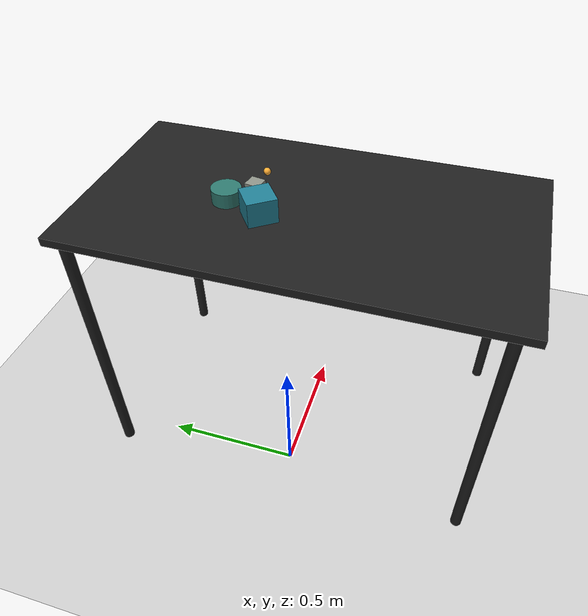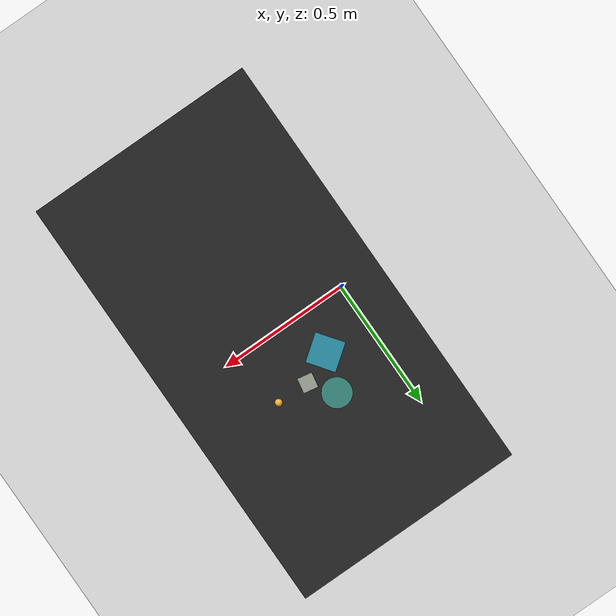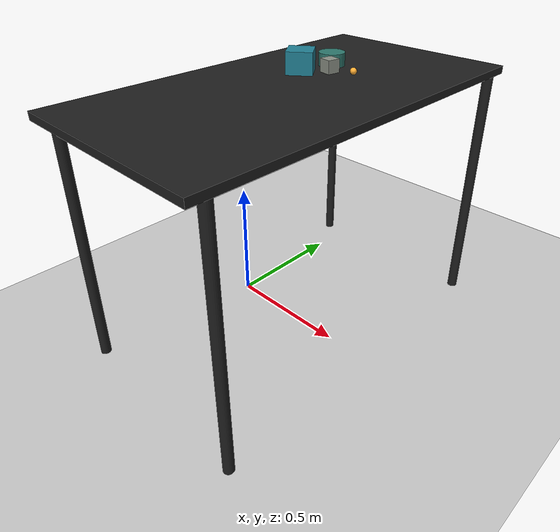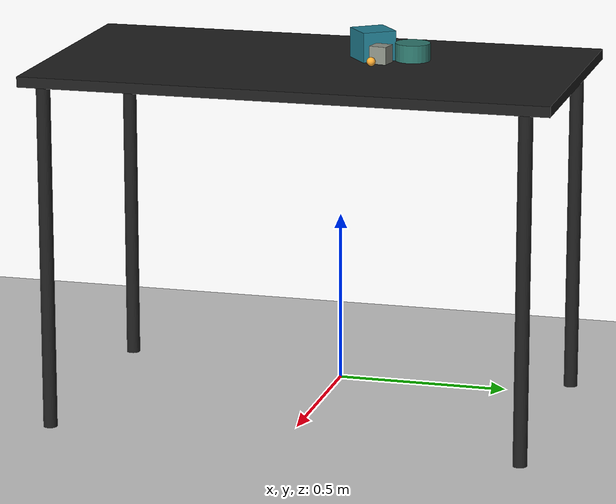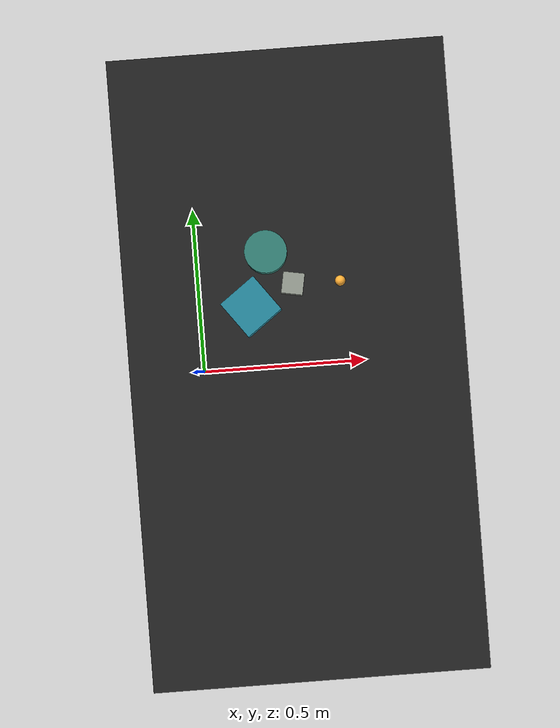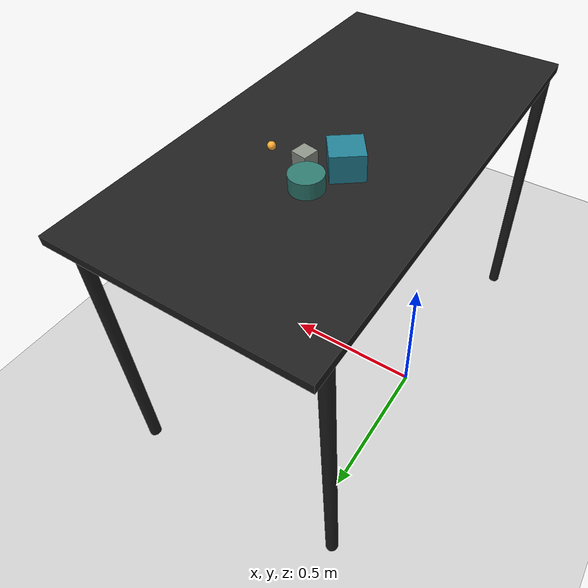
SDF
<?xml version="1.0" ?>
<sdf version="1.6">
  <world name="arm_world">
    <plugin filename="gz-sim-physics-system" name="gz::sim::systems::Physics">
      <engine>
        <filename>libgz-physics-bullet-featherstone-plugin.so</filename>
      </engine>
    </plugin>
    <plugin filename="gz-sim-user-commands-system" name="gz::sim::systems::UserCommands"/>
    <plugin filename="gz-sim-scene-broadcaster-system" name="gz::sim::systems::SceneBroadcaster"/>
    <plugin filename="gz-sim-sensors-system" name="gz::sim::systems::Sensors">
      <render_engine>ogre2</render_engine>
    </plugin>
    <gravity>0.0 0.0 -9.8</gravity>
    <scene>
      <shadows>false</shadows>
    </scene>
    <gui>
      <camera name="user_camera">
        <pose>0.75 -0.75 1.4 0 0.29 2.21</pose>
      </camera>
    </gui>
    <include>
      <uri>https://fuel.gazebosim.org/1.0/OpenRobotics/models/Sun</uri>
    </include>
    <model name="table">
      <static>true</static>
      <include>
        <uri>model://table</uri>
      </include>
      <pose>0.29 0 0 0 0 1.5708</pose>
    </model>
    <model name="ground_plane">
      <static>true</static>
      <link name="link">
        <collision name="collision">
          <geometry>
            <plane>
              <normal>0 0 1</normal>
            </plane>
          </geometry>
          <surface>
            <friction>
              <ode>
                <mu>1.0</mu>
                <mu2>1.0</mu2>
              </ode>
            </friction>
          </surface>
        </collision>
        <visual name="visual">
          <geometry>
            <plane>
              <normal>0 0 1</normal>
              <size>100 100</size>
            </plane>
          </geometry>
          <material>
            <ambient>0.8 0.8 0.8 1</ambient>
            <diffuse>0.8 0.8 0.8 1</diffuse>
            <specular>0.8 0.8 0.8 1</specular>
          </material>
        </visual>
      </link>
    </model>
    <model name="cube_l_0">
      <pose>0.191 0.142 1.05 0 0 5.35</pose>
      <link name="cube_l_0_link">
        <inertial>
          <mass>0.05</mass>
          <inertia>
            <ixx>2.04e-7</ixx>
            <iyy>2.04e-7</iyy>
            <izz>3.9e-8</izz>
            <ixy>0</ixy>
            <ixz>0</ixz>
            <iyz>0</iyz>
          </inertia>
        </inertial>
        <collision name="cube_l_0_collision">
          <geometry>
            <box>
              <size>0.1 0.1 0.1</size>
            </box>
          </geometry>
          <surface>
            <friction>
              <ode>
                <mu>0.8</mu>
                <mu2>0.8</mu2>
                <fdir1>0 0 1</fdir1>
                <slip1>0.001</slip1>
                <slip2>0.001</slip2>
              </ode>
              <torsional>
                <coefficient>0.1</coefficient>
                <surface_radius>0.015</surface_radius>
                <use_patch_radius>true</use_patch_radius>
              </torsional>
            </friction>
            <contact>
              <ode>
                <kp>1e5</kp>
                <kd>10</kd>
                <max_vel>0.1</max_vel>
                <min_depth>0.001</min_depth>
                <soft_cfm>0.01</soft_cfm>
                <soft_erp>0.2</soft_erp>
              </ode>
            </contact>
            <bounce>
              <restitution_coefficient>0.2</restitution_coefficient>
              <threshold>0.01</threshold>
            </bounce>
          </surface>
        </collision>
        <visual name="cube_l_0_visual">
          <geometry>
            <box>
              <size>0.1 0.1 0.1</size>
            </box>
          </geometry>
          <material>
            <ambient>0.13 0.5 0.58 1</ambient>
            <diffuse>0.13 0.5 0.58 1</diffuse>
          </material>
        </visual>
        <velocity_decay>
          <linear>1</linear>
          <angular>1</angular>
        </velocity_decay>
      </link>
    </model>
    <model name="sphere_s_1">
      <pose>0.403 0.189 1.05 0 0 0.7</pose>
      <link name="sphere_s_1_link">
        <inertial>
          <mass>0.05</mass>
          <inertia>
            <ixx>2.04e-7</ixx>
            <iyy>2.04e-7</iyy>
            <izz>3.9e-8</izz>
            <ixy>0</ixy>
            <ixz>0</ixz>
            <iyz>0</iyz>
          </inertia>
        </inertial>
        <collision name="sphere_s_1_collision">
          <geometry>
            <sphere>
              <radius>0.0125</radius>
            </sphere>
          </geometry>
          <surface>
            <friction>
              <ode>
                <mu>0.8</mu>
                <mu2>0.8</mu2>
                <fdir1>0 0 1</fdir1>
                <slip1>0.001</slip1>
                <slip2>0.001</slip2>
              </ode>
              <torsional>
                <coefficient>0.1</coefficient>
                <surface_radius>0.015</surface_radius>
                <use_patch_radius>true</use_patch_radius>
              </torsional>
            </friction>
            <contact>
              <ode>
                <kp>1e5</kp>
                <kd>10</kd>
                <max_vel>0.1</max_vel>
                <min_depth>0.001</min_depth>
                <soft_cfm>0.01</soft_cfm>
                <soft_erp>0.2</soft_erp>
              </ode>
            </contact>
            <bounce>
              <restitution_coefficient>0.2</restitution_coefficient>
              <threshold>0.01</threshold>
            </bounce>
          </surface>
        </collision>
        <visual name="sphere_s_1_visual">
          <geometry>
            <sphere>
              <radius>0.0125</radius>
            </sphere>
          </geometry>
          <material>
            <ambient>1.0 0.68 0.2 1</ambient>
            <diffuse>1.0 0.68 0.2 1</diffuse>
          </material>
        </visual>
        <velocity_decay>
          <linear>1</linear>
          <angular>1</angular>
        </velocity_decay>
      </link>
    </model>
    <model name="sphere_s_2">
      <pose>0.213 0.132 1.05 0 0 2.64</pose>
      <link name="sphere_s_2_link">
        <inertial>
          <mass>0.05</mass>
          <inertia>
            <ixx>2.04e-7</ixx>
            <iyy>2.04e-7</iyy>
            <izz>3.9e-8</izz>
            <ixy>0</ixy>
            <ixz>0</ixz>
            <iyz>0</iyz>
          </inertia>
        </inertial>
        <collision name="sphere_s_2_collision">
          <geometry>
            <sphere>
              <radius>0.0125</radius>
            </sphere>
          </geometry>
          <surface>
            <friction>
              <ode>
                <mu>0.8</mu>
                <mu2>0.8</mu2>
                <fdir1>0 0 1</fdir1>
                <slip1>0.001</slip1>
                <slip2>0.001</slip2>
              </ode>
              <torsional>
                <coefficient>0.1</coefficient>
                <surface_radius>0.015</surface_radius>
                <use_patch_radius>true</use_patch_radius>
              </torsional>
            </friction>
            <contact>
              <ode>
                <kp>1e5</kp>
                <kd>10</kd>
                <max_vel>0.1</max_vel>
                <min_depth>0.001</min_depth>
                <soft_cfm>0.01</soft_cfm>
                <soft_erp>0.2</soft_erp>
              </ode>
            </contact>
            <bounce>
              <restitution_coefficient>0.2</restitution_coefficient>
              <threshold>0.01</threshold>
            </bounce>
          </surface>
        </collision>
        <visual name="sphere_s_2_visual">
          <geometry>
            <sphere>
              <radius>0.0125</radius>
            </sphere>
          </geometry>
          <material>
            <ambient>0.87 0.92 0.56 1</ambient>
            <diffuse>0.87 0.92 0.56 1</diffuse>
          </material>
        </visual>
        <velocity_decay>
          <linear>1</linear>
          <angular>1</angular>
        </velocity_decay>
      </link>
    </model>
    <model name="cube_m_3">
      <pose>0.292 0.19 1.05 0 0 2.96</pose>
      <link name="cube_m_3_link">
        <inertial>
          <mass>0.05</mass>
          <inertia>
            <ixx>2.04e-7</ixx>
            <iyy>2.04e-7</iyy>
            <izz>3.9e-8</izz>
            <ixy>0</ixy>
            <ixz>0</ixz>
            <iyz>0</iyz>
          </inertia>
        </inertial>
        <collision name="cube_m_3_collision">
          <geometry>
            <box>
              <size>0.05 0.05 0.05</size>
            </box>
          </geometry>
          <surface>
            <friction>
              <ode>
                <mu>0.8</mu>
                <mu2>0.8</mu2>
                <fdir1>0 0 1</fdir1>
                <slip1>0.001</slip1>
                <slip2>0.001</slip2>
              </ode>
              <torsional>
                <coefficient>0.1</coefficient>
                <surface_radius>0.015</surface_radius>
                <use_patch_radius>true</use_patch_radius>
              </torsional>
            </friction>
            <contact>
              <ode>
                <kp>1e5</kp>
                <kd>10</kd>
                <max_vel>0.1</max_vel>
                <min_depth>0.001</min_depth>
                <soft_cfm>0.01</soft_cfm>
                <soft_erp>0.2</soft_erp>
              </ode>
            </contact>
            <bounce>
              <restitution_coefficient>0.2</restitution_coefficient>
              <threshold>0.01</threshold>
            </bounce>
          </surface>
        </collision>
        <visual name="cube_m_3_visual">
          <geometry>
            <box>
              <size>0.05 0.05 0.05</size>
            </box>
          </geometry>
          <material>
            <ambient>0.55 0.57 0.53 1</ambient>
            <diffuse>0.55 0.57 0.53 1</diffuse>
          </material>
        </visual>
        <velocity_decay>
          <linear>1</linear>
          <angular>1</angular>
        </velocity_decay>
      </link>
    </model>
    <model name="cylinder_l_4">
      <pose>0.234 0.268 1.05 0 0 3.38</pose>
      <link name="cylinder_l_4_link">
        <inertial>
          <mass>0.05</mass>
          <inertia>
            <ixx>2.04e-7</ixx>
            <iyy>2.04e-7</iyy>
            <izz>3.9e-8</izz>
            <ixy>0</ixy>
            <ixz>0</ixz>
            <iyz>0</iyz>
          </inertia>
        </inertial>
        <collision name="cylinder_l_4_collision">
          <geometry>
            <cylinder>
              <radius>0.05</radius>
              <length>0.05</length>
            </cylinder>
          </geometry>
          <surface>
            <friction>
              <ode>
                <mu>0.8</mu>
                <mu2>0.8</mu2>
                <fdir1>0 0 1</fdir1>
                <slip1>0.001</slip1>
                <slip2>0.001</slip2>
              </ode>
              <torsional>
                <coefficient>0.1</coefficient>
                <surface_radius>0.015</surface_radius>
                <use_patch_radius>true</use_patch_radius>
              </torsional>
            </friction>
            <contact>
              <ode>
                <kp>1e5</kp>
                <kd>10</kd>
                <max_vel>0.1</max_vel>
                <min_depth>0.001</min_depth>
                <soft_cfm>0.01</soft_cfm>
                <soft_erp>0.2</soft_erp>
              </ode>
            </contact>
            <bounce>
              <restitution_coefficient>0.2</restitution_coefficient>
              <threshold>0.01</threshold>
            </bounce>
          </surface>
        </collision>
        <visual name="cylinder_l_4_visual">
          <geometry>
            <cylinder>
              <radius>0.05</radius>
              <length>0.05</length>
            </cylinder>
          </geometry>
          <material>
            <ambient>0.18 0.47 0.43 1</ambient>
            <diffuse>0.18 0.47 0.43 1</diffuse>
          </material>
        </visual>
        <velocity_decay>
          <linear>1</linear>
          <angular>1</angular>
        </velocity_decay>
      </link>
    </model>
  </world>
</sdf>

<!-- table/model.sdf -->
<sdf version="1.5">
  <model name="table">
    <static>true</static>
    <link name="link">
      <collision name="surface">
        <pose>0 0 1.0 0 0 0</pose>
        <geometry>
          <box>
            <size>1.5 0.8 0.03</size>
          </box>
        </geometry>
        <surface>
          <friction>
            <ode>
              <mu>0.6</mu>
              <mu2>0.6</mu2>
            </ode>
          </friction>
        </surface>
      </collision>
      <visual name="surface">
        <pose>0 0 1.0 0 0 0</pose>
        <geometry>
          <box>
            <size>1.5 0.8 0.03</size>
          </box>
        </geometry>
        <material>
          <script>
            <uri>file://media/materials/scripts/gazebo.material</uri>
            <name>Gazebo/Black</name>
          </script>
        </material>
      </visual>
      <collision name="front_left_leg">
        <pose>0.68 0.38 0.5 0 0 0</pose>
        <geometry>
          <cylinder>
            <radius>0.02</radius>
            <length>1.0</length>
          </cylinder>
        </geometry>
      </collision>
      <visual name="front_left_leg">
        <pose>0.68 0.38 0.5 0 0 0</pose>
        <geometry>
          <cylinder>
            <radius>0.02</radius>
            <length>1.0</length>
          </cylinder>
        </geometry>
        <material>
          <script>
            <uri>file://media/materials/scripts/gazebo.material</uri>
            <name>Gazebo/Black</name>
          </script>
        </material>
      </visual>
      <collision name="front_right_leg">
        <pose>0.68 -0.38 0.5 0 0 0</pose>
        <geometry>
          <cylinder>
            <radius>0.02</radius>
            <length>1.0</length>
          </cylinder>
        </geometry>
      </collision>
      <visual name="front_right_leg">
        <pose>0.68 -0.38 0.5 0 0 0</pose>
        <geometry>
          <cylinder>
            <radius>0.02</radius>
            <length>1.0</length>
          </cylinder>
        </geometry>
        <material>
          <script>
            <uri>file://media/materials/scripts/gazebo.material</uri>
            <name>Gazebo/Black</name>
          </script>
        </material>
      </visual>
      <collision name="back_right_leg">
        <pose>-0.68 -0.38 0.5 0 0 0</pose>
        <geometry>
          <cylinder>
            <radius>0.02</radius>
            <length>1.0</length>
          </cylinder>
        </geometry>
      </collision>
      <visual name="back_right_leg">
        <pose>-0.68 -0.38 0.5 0 0 0</pose>
        <geometry>
          <cylinder>
            <radius>0.02</radius>
            <length>1.0</length>
          </cylinder>
        </geometry>
        <material>
          <script>
            <uri>file://media/materials/scripts/gazebo.material</uri>
            <name>Gazebo/Black</name>
          </script>
        </material>
      </visual>
      <collision name="back_left_leg">
        <pose>-0.68 0.38 0.5 0 0 0</pose>
        <geometry>
          <cylinder>
            <radius>0.02</radius>
            <length>1.0</length>
          </cylinder>
        </geometry>
      </collision>
      <visual name="back_left_leg">
        <pose>-0.68 0.38 0.5 0 0 0</pose>
        <geometry>
          <cylinder>
            <radius>0.02</radius>
            <length>1.0</length>
          </cylinder>
        </geometry>
        <material>
          <script>
            <uri>file://media/materials/scripts/gazebo.material</uri>
            <name>Gazebo/Black</name>
          </script>
        </material>
      </visual>
    </link>
  </model>
</sdf>
